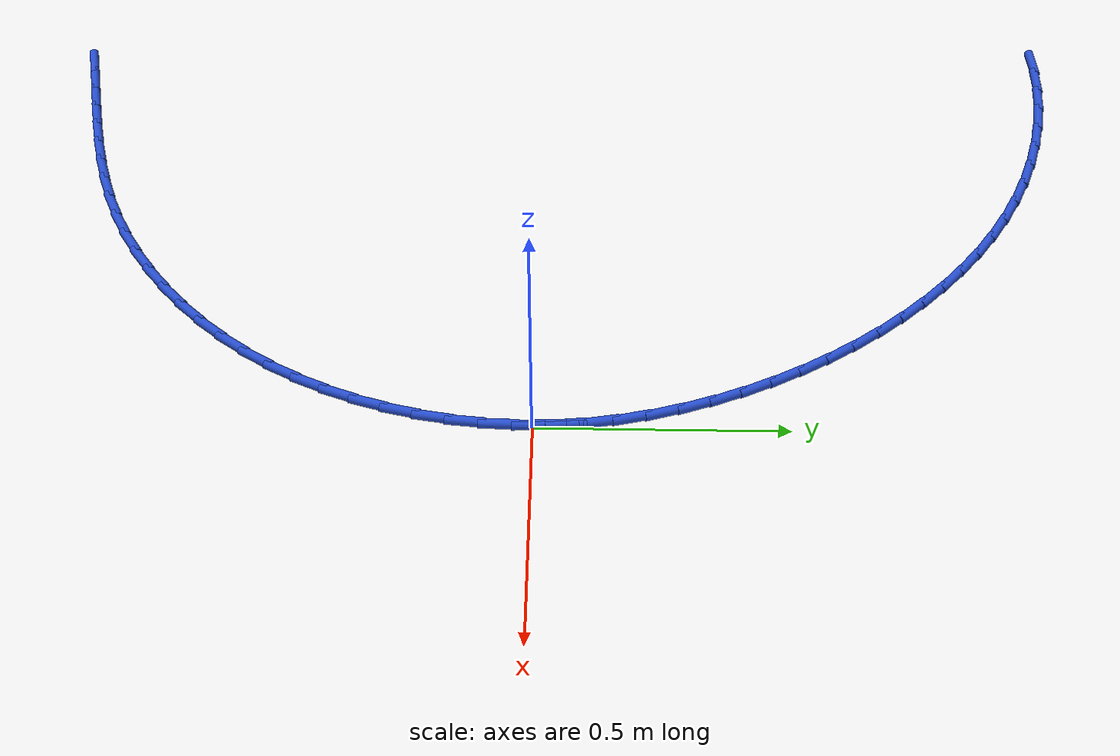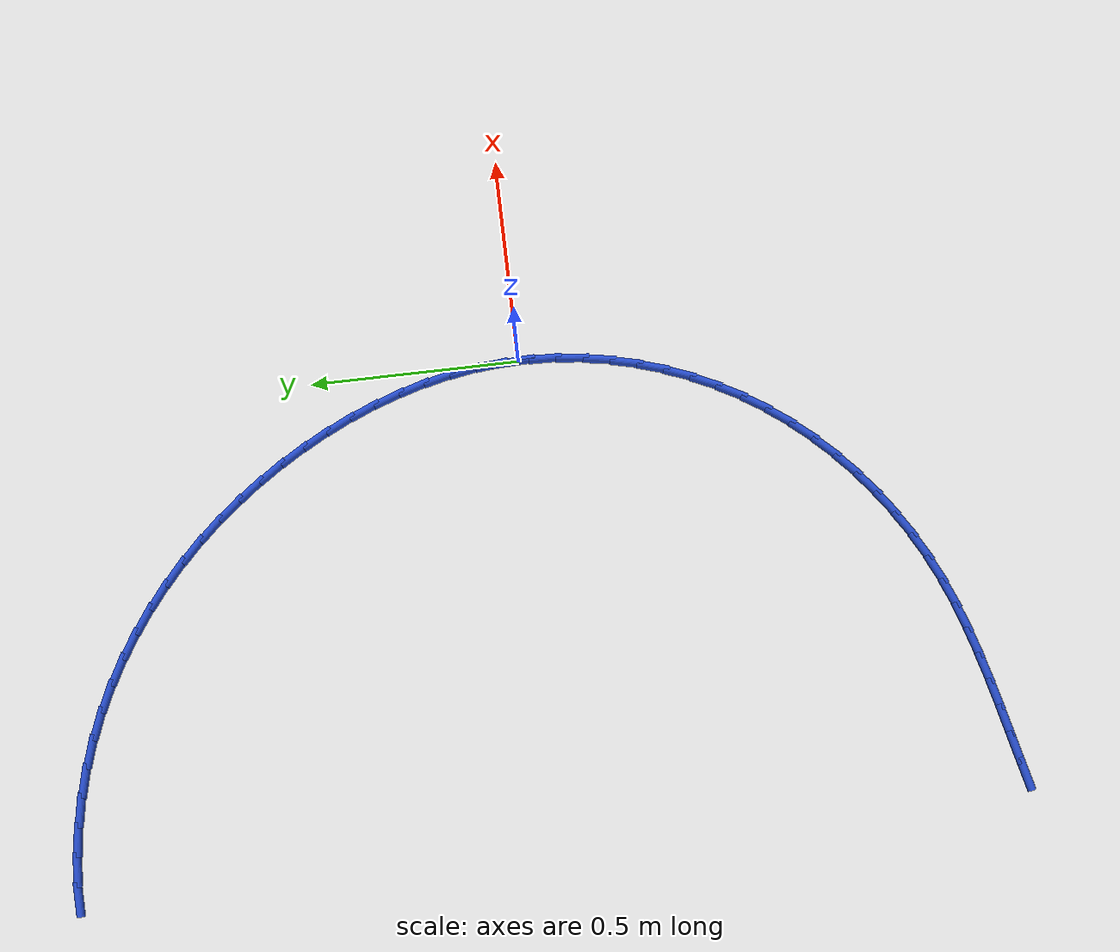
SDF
<sdf version="1.6">
 <world name="default">
  <model name="ground_plane">
   <static>1</static>
   <link name="link">
    <collision name="collision">
     <geometry><plane><normal>0 0 1</normal><size>100 100</size></plane></geometry>
     <surface><friction><ode><mu>100</mu><mu2>50</mu2></ode></friction></surface>
    </collision>
    <visual name="visual">
     <cast_shadows>0</cast_shadows>
     <geometry><plane><normal>0 0 1</normal><size>100 100</size></plane></geometry>
     <material>
      <script><uri>file://media/materials/scripts/gazebo.material</uri><name>Gazebo/WhiteGlow</name></script>
     </material>
    </visual>
   </link>
  </model>
  <model name="line">
   <link name="link_0">
    <pose>4.85722573273506e-17 -9.71445146547012e-17 0.01 0 1.57 -1.524656434522139</pose>
    <collision name="collision">
     <geometry><cylinder><radius>0.01</radius><length>0.08</length></cylinder></geometry>
    </collision>
    <visual name="visual">
     <material>
      <script><name>Gazebo/Blue</name><uri>file://media/materials/scripts/gazebo.material</uri></script>
     </material>
     <geometry><cylinder><radius>0.01</radius><length>0.08</length></cylinder></geometry>
    </visual>
   </link>
   <link name="link_1">
    <pose>-0.0029749131496951786 0.0644301843004377 0.01 0 1.57 -1.4567657183621507</pose>
    <collision name="collision">
     <geometry><cylinder><radius>0.01</radius><length>0.08</length></cylinder></geometry>
    </collision>
    <visual name="visual">
     <material>
      <script><name>Gazebo/Blue</name><uri>file://media/materials/scripts/gazebo.material</uri></script>
     </material>
     <geometry><cylinder><radius>0.01</radius><length>0.08</length></cylinder></geometry>
    </visual>
   </link>
   <link name="link_2">
    <pose>-0.010311254597614566 0.1284876847375876 0.01 0 1.57 -1.3918663711721646</pose>
    <collision name="collision">
     <geometry><cylinder><radius>0.01</radius><length>0.08</length></cylinder></geometry>
    </collision>
    <visual name="visual">
     <material>
      <script><name>Gazebo/Blue</name><uri>file://media/materials/scripts/gazebo.material</uri></script>
     </material>
     <geometry><cylinder><radius>0.01</radius><length>0.08</length></cylinder></geometry>
    </visual>
   </link>
   <link name="link_3">
    <pose>-0.02180216479442657 0.19202102040752406 0.01 0 1.57 -1.3299515441887544</pose>
    <collision name="collision">
     <geometry><cylinder><radius>0.01</radius><length>0.08</length></cylinder></geometry>
    </collision>
    <visual name="visual">
     <material>
      <script><name>Gazebo/Blue</name><uri>file://media/materials/scripts/gazebo.material</uri></script>
     </material>
     <geometry><cylinder><radius>0.01</radius><length>0.08</length></cylinder></geometry>
    </visual>
   </link>
   <link name="link_4">
    <pose>-0.03724078419079962 0.25487871040632126 0.01 0 1.57 -1.2709262907920054</pose>
    <collision name="collision">
     <geometry><cylinder><radius>0.01</radius><length>0.08</length></cylinder></geometry>
    </collision>
    <visual name="visual">
     <material>
      <script><name>Gazebo/Blue</name><uri>file://media/materials/scripts/gazebo.material</uri></script>
     </material>
     <geometry><cylinder><radius>0.01</radius><length>0.08</length></cylinder></geometry>
    </visual>
   </link>
   <link name="link_5">
    <pose>-0.05642025323740218 0.31690927383005346 0.01 0 1.57 -1.2146277151145326</pose>
    <collision name="collision">
     <geometry><cylinder><radius>0.01</radius><length>0.08</length></cylinder></geometry>
    </collision>
    <visual name="visual">
     <material>
      <script><name>Gazebo/Blue</name><uri>file://media/materials/scripts/gazebo.material</uri></script>
     </material>
     <geometry><cylinder><radius>0.01</radius><length>0.08</length></cylinder></geometry>
    </visual>
   </link>
   <link name="link_6">
    <pose>-0.07913371238490266 0.377961229774795 0.01 0 1.57 -1.16084298295596</pose>
    <collision name="collision">
     <geometry><cylinder><radius>0.01</radius><length>0.08</length></cylinder></geometry>
    </collision>
    <visual name="visual">
     <material>
      <script><name>Gazebo/Blue</name><uri>file://media/materials/scripts/gazebo.material</uri></script>
     </material>
     <geometry><cylinder><radius>0.01</radius><length>0.08</length></cylinder></geometry>
    </visual>
   </link>
   <link name="link_7">
    <pose>-0.10517430208396951 0.43788309733662 0.01 0 1.57 -1.1093241698538725</pose>
    <collision name="collision">
     <geometry><cylinder><radius>0.01</radius><length>0.08</length></cylinder></geometry>
    </collision>
    <visual name="visual">
     <material>
      <script><name>Gazebo/Blue</name><uri>file://media/materials/scripts/gazebo.material</uri></script>
     </material>
     <geometry><cylinder><radius>0.01</radius><length>0.08</length></cylinder></geometry>
    </visual>
   </link>
   <link name="link_8">
    <pose>-0.13433516278527122 0.4965233956116031 0.01 0 1.57 -1.0597953399727036</pose>
    <collision name="collision">
     <geometry><cylinder><radius>0.01</radius><length>0.08</length></cylinder></geometry>
    </collision>
    <visual name="visual">
     <material>
      <script><name>Gazebo/Blue</name><uri>file://media/materials/scripts/gazebo.material</uri></script>
     </material>
     <geometry><cylinder><radius>0.01</radius><length>0.08</length></cylinder></geometry>
    </visual>
   </link>
   <link name="link_9">
    <pose>-0.16640972633939105 0.5537305868075838 0.01 0 1.57 -1.011348140047373</pose>
    <collision name="collision">
     <geometry><cylinder><radius>0.01</radius><length>0.08</length></cylinder></geometry>
    </collision>
    <visual name="visual">
     <material>
      <script><name>Gazebo/Blue</name><uri>file://media/materials/scripts/gazebo.material</uri></script>
     </material>
     <geometry><cylinder><radius>0.01</radius><length>0.08</length></cylinder></geometry>
    </visual>
   </link>
   <link name="link_10">
    <pose>-0.20123427471767882 0.609344767763737 0.01 0 1.57 -0.9624730708298403</pose>
    <collision name="collision">
     <geometry><cylinder><radius>0.01</radius><length>0.08</length></cylinder></geometry>
    </collision>
    <visual name="visual">
     <material>
      <script><name>Gazebo/Blue</name><uri>file://media/materials/scripts/gazebo.material</uri></script>
     </material>
     <geometry><cylinder><radius>0.01</radius><length>0.08</length></cylinder></geometry>
    </visual>
   </link>
   <link name="link_11">
    <pose>-0.23873274293101282 0.6631889233490215 0.01 0 1.57 -0.9128312089106803</pose>
    <collision name="collision">
     <geometry><cylinder><radius>0.01</radius><length>0.08</length></cylinder></geometry>
    </collision>
    <visual name="visual">
     <material>
      <script><name>Gazebo/Blue</name><uri>file://media/materials/scripts/gazebo.material</uri></script>
     </material>
     <geometry><cylinder><radius>0.01</radius><length>0.08</length></cylinder></geometry>
    </visual>
   </link>
   <link name="link_12">
    <pose>-0.2788397841417928 0.7150839459928123 0.01 0 1.57 -0.8622508484679213</pose>
    <collision name="collision">
     <geometry><cylinder><radius>0.01</radius><length>0.08</length></cylinder></geometry>
    </collision>
    <visual name="visual">
     <material>
      <script><name>Gazebo/Blue</name><uri>file://media/materials/scripts/gazebo.material</uri></script>
     </material>
     <geometry><cylinder><radius>0.01</radius><length>0.08</length></cylinder></geometry>
    </visual>
   </link>
   <link name="link_13">
    <pose>-0.32149005151241844 0.7648507281244844 0.01 0 1.57 -0.8105721105890197</pose>
    <collision name="collision">
     <geometry><cylinder><radius>0.01</radius><length>0.08</length></cylinder></geometry>
    </collision>
    <visual name="visual">
     <material>
      <script><name>Gazebo/Blue</name><uri>file://media/materials/scripts/gazebo.material</uri></script>
     </material>
     <geometry><cylinder><radius>0.01</radius><length>0.08</length></cylinder></geometry>
    </visual>
   </link>
   <link name="link_14">
    <pose>-0.36661819820528924 0.8123101621734122 0.01 0 1.57 -0.7576504575154394</pose>
    <collision name="collision">
     <geometry><cylinder><radius>0.01</radius><length>0.08</length></cylinder></geometry>
    </collision>
    <visual name="visual">
     <material>
      <script><name>Gazebo/Blue</name><uri>file://media/materials/scripts/gazebo.material</uri></script>
     </material>
     <geometry><cylinder><radius>0.01</radius><length>0.08</length></cylinder></geometry>
    </visual>
   </link>
   <link name="link_15">
    <pose>-0.4141588773828051 0.8572831405689711 0.01 0 1.57 -0.7033610318521443</pose>
    <collision name="collision">
     <geometry><cylinder><radius>0.01</radius><length>0.08</length></cylinder></geometry>
    </collision>
    <visual name="visual">
     <material>
      <script><name>Gazebo/Blue</name><uri>file://media/materials/scripts/gazebo.material</uri></script>
     </material>
     <geometry><cylinder><radius>0.01</radius><length>0.08</length></cylinder></geometry>
    </visual>
   </link>
   <link name="link_16">
    <pose>-0.46404674220736575 0.8995905557405358 0.01 0 1.57 -0.6476038121578834</pose>
    <collision name="collision">
     <geometry><cylinder><radius>0.01</radius><length>0.08</length></cylinder></geometry>
    </collision>
    <visual name="visual">
     <material>
      <script><name>Gazebo/Blue</name><uri>file://media/materials/scripts/gazebo.material</uri></script>
     </material>
     <geometry><cylinder><radius>0.01</radius><length>0.08</length></cylinder></geometry>
    </visual>
   </link>
   <link name="link_17">
    <pose>-0.5162164458413705 0.9390533001174807 0.01 0 1.57 -0.5903094747901391</pose>
    <collision name="collision">
     <geometry><cylinder><radius>0.01</radius><length>0.08</length></cylinder></geometry>
    </collision>
    <visual name="visual">
     <material>
      <script><name>Gazebo/Blue</name><uri>file://media/materials/scripts/gazebo.material</uri></script>
     </material>
     <geometry><cylinder><radius>0.01</radius><length>0.08</length></cylinder></geometry>
    </visual>
   </link>
   <link name="link_18">
    <pose>-0.5706026414472194 0.9754922661291812 0.01 0 1.57 -0.5314457160186805</pose>
    <collision name="collision">
     <geometry><cylinder><radius>0.01</radius><length>0.08</length></cylinder></geometry>
    </collision>
    <visual name="visual">
     <material>
      <script><name>Gazebo/Blue</name><uri>file://media/materials/scripts/gazebo.material</uri></script>
     </material>
     <geometry><cylinder><radius>0.01</radius><length>0.08</length></cylinder></geometry>
    </visual>
   </link>
   <link name="link_19">
    <pose>-0.627139982187312 1.008728346205012 0.01 0 1.57 -0.4710236235143793</pose>
    <collision name="collision">
     <geometry><cylinder><radius>0.01</radius><length>0.08</length></cylinder></geometry>
    </collision>
    <visual name="visual">
     <material>
      <script><name>Gazebo/Blue</name><uri>file://media/materials/scripts/gazebo.material</uri></script>
     </material>
     <geometry><cylinder><radius>0.01</radius><length>0.08</length></cylinder></geometry>
    </visual>
   </link>
   <link name="link_20">
    <pose>-0.685763121224048 1.0385824327743478 0.01 0 1.57 -0.40910350942941914</pose>
    <collision name="collision">
     <geometry><cylinder><radius>0.01</radius><length>0.08</length></cylinder></geometry>
    </collision>
    <visual name="visual">
     <material>
      <script><name>Gazebo/Blue</name><uri>file://media/materials/scripts/gazebo.material</uri></script>
     </material>
     <geometry><cylinder><radius>0.01</radius><length>0.08</length></cylinder></geometry>
    </visual>
   </link>
   <link name="link_21">
    <pose>-0.7464067117198266 1.0648754182665632 0.01 0 1.57 -0.3458070608126541</pose>
    <collision name="collision">
     <geometry><cylinder><radius>0.01</radius><length>0.08</length></cylinder></geometry>
    </collision>
    <visual name="visual">
     <material>
      <script><name>Gazebo/Blue</name><uri>file://media/materials/scripts/gazebo.material</uri></script>
     </material>
     <geometry><cylinder><radius>0.01</radius><length>0.08</length></cylinder></geometry>
    </visual>
   </link>
   <link name="link_22">
    <pose>-0.8090042279125875 1.0874283079122833 0.01 0 1.57 -0.2819776294985658</pose>
    <collision name="collision">
     <geometry><cylinder><radius>0.01</radius><length>0.08</length></cylinder></geometry>
    </collision>
    <visual name="visual">
     <material>
      <script><name>Gazebo/Blue</name><uri>file://media/materials/scripts/gazebo.material</uri></script>
     </material>
     <geometry><cylinder><radius>0.01</radius><length>0.08</length></cylinder></geometry>
    </visual>
   </link>
   <link name="link_23">
    <pose>-0.8733664892705679 1.106073842733336 0.01 0 1.57 -0.2185326369372709</pose>
    <collision name="collision">
     <geometry><cylinder><radius>0.01</radius><length>0.08</length></cylinder></geometry>
    </collision>
    <visual name="visual">
     <material>
      <script><name>Gazebo/Blue</name><uri>file://media/materials/scripts/gazebo.material</uri></script>
     </material>
     <geometry><cylinder><radius>0.01</radius><length>0.08</length></cylinder></geometry>
    </visual>
   </link>
   <link name="link_24">
    <pose>-0.9390761632898281 1.1206665936723492 0.01 0 1.57 -0.15482586997781483</pose>
    <collision name="collision">
     <geometry><cylinder><radius>0.01</radius><length>0.08</length></cylinder></geometry>
    </collision>
    <visual name="visual">
     <material>
      <script><name>Gazebo/Blue</name><uri>file://media/materials/scripts/gazebo.material</uri></script>
     </material>
     <geometry><cylinder><radius>0.01</radius><length>0.08</length></cylinder></geometry>
    </visual>
   </link>
   <link name="link_25">
    <pose>-1.0056910559875676 1.1310635104553068 0.01 0 1.57 -0.09006901137833963</pose>
    <collision name="collision">
     <geometry><cylinder><radius>0.01</radius><length>0.08</length></cylinder></geometry>
    </collision>
    <visual name="visual">
     <material>
      <script><name>Gazebo/Blue</name><uri>file://media/materials/scripts/gazebo.material</uri></script>
     </material>
     <geometry><cylinder><radius>0.01</radius><length>0.08</length></cylinder></geometry>
    </visual>
   </link>
   <link name="link_26">
    <pose>-1.0727689733809862 1.137121542808194 0.01 0 1.57 -0.023484907272703887</pose>
    <collision name="collision">
     <geometry><cylinder><radius>0.01</radius><length>0.08</length></cylinder></geometry>
    </collision>
    <visual name="visual">
     <material>
      <script><name>Gazebo/Blue</name><uri>file://media/materials/scripts/gazebo.material</uri></script>
     </material>
     <geometry><cylinder><radius>0.01</radius><length>0.08</length></cylinder></geometry>
    </visual>
   </link>
   <link name="link_27">
    <pose>-1.1398677214872837 1.1386976404569957 0.01 0 1.57 0.04569412947212693</pose>
    <collision name="collision">
     <geometry><cylinder><radius>0.01</radius><length>0.08</length></cylinder></geometry>
    </collision>
    <visual name="visual">
     <material>
      <script><name>Gazebo/Blue</name><uri>file://media/materials/scripts/gazebo.material</uri></script>
     </material>
     <geometry><cylinder><radius>0.01</radius><length>0.08</length></cylinder></geometry>
    </visual>
   </link>
   <link name="link_84">
    <pose>-1.1054994521472716 -1.0578732640866308 0.01 0 1.57 0.22025238587209262</pose>
    <collision name="collision">
     <geometry><cylinder><radius>0.01</radius><length>0.08</length></cylinder></geometry>
    </collision>
    <visual name="visual">
     <material>
      <script><name>Gazebo/Blue</name><uri>file://media/materials/scripts/gazebo.material</uri></script>
     </material>
     <geometry><cylinder><radius>0.01</radius><length>0.08</length></cylinder></geometry>
    </visual>
   </link>
   <link name="link_85">
    <pose>-1.0419345693854802 -1.043642075710552 0.01 0 1.57 0.2159953931601478</pose>
    <collision name="collision">
     <geometry><cylinder><radius>0.01</radius><length>0.08</length></cylinder></geometry>
    </collision>
    <visual name="visual">
     <material>
      <script><name>Gazebo/Blue</name><uri>file://media/materials/scripts/gazebo.material</uri></script>
     </material>
     <geometry><cylinder><radius>0.01</radius><length>0.08</length></cylinder></geometry>
    </visual>
   </link>
   <link name="link_86">
    <pose>-0.9786045428349248 -1.029746308856796 0.01 0 1.57 0.22071317221761327</pose>
    <collision name="collision">
     <geometry><cylinder><radius>0.01</radius><length>0.08</length></cylinder></geometry>
    </collision>
    <visual name="visual">
     <material>
      <script><name>Gazebo/Blue</name><uri>file://media/materials/scripts/gazebo.material</uri></script>
     </material>
     <geometry><cylinder><radius>0.01</radius><length>0.08</length></cylinder></geometry>
    </visual>
   </link>
   <link name="link_87">
    <pose>-0.9156502059909428 -1.0156213465405357 0.01 0 1.57 0.23454070662494564</pose>
    <collision name="collision">
     <geometry><cylinder><radius>0.01</radius><length>0.08</length></cylinder></geometry>
    </collision>
    <visual name="visual">
     <material>
      <script><name>Gazebo/Blue</name><uri>file://media/materials/scripts/gazebo.material</uri></script>
     </material>
     <geometry><cylinder><radius>0.01</radius><length>0.08</length></cylinder></geometry>
    </visual>
   </link>
   <link name="link_88">
    <pose>-0.8532123923488748 -1.0007025717769444 0.01 0 1.57 0.25761417921121893</pose>
    <collision name="collision">
     <geometry><cylinder><radius>0.01</radius><length>0.08</length></cylinder></geometry>
    </collision>
    <visual name="visual">
     <material>
      <script><name>Gazebo/Blue</name><uri>file://media/materials/scripts/gazebo.material</uri></script>
     </material>
     <geometry><cylinder><radius>0.01</radius><length>0.08</length></cylinder></geometry>
    </visual>
   </link>
   <link name="link_89">
    <pose>-0.7914319354040585 -0.9844253675811959 0.01 0 1.57 0.2900355720072968</pose>
    <collision name="collision">
     <geometry><cylinder><radius>0.01</radius><length>0.08</length></cylinder></geometry>
    </collision>
    <visual name="visual">
     <material>
      <script><name>Gazebo/Blue</name><uri>file://media/materials/scripts/gazebo.material</uri></script>
     </material>
     <geometry><cylinder><radius>0.01</radius><length>0.08</length></cylinder></geometry>
    </visual>
   </link>
   <link name="link_90">
    <pose>-0.7304496686518341 -0.9662251169684639 0.01 0 1.57 0.33181157678569667</pose>
    <collision name="collision">
     <geometry><cylinder><radius>0.01</radius><length>0.08</length></cylinder></geometry>
    </collision>
    <visual name="visual">
     <material>
      <script><name>Gazebo/Blue</name><uri>file://media/materials/scripts/gazebo.material</uri></script>
     </material>
     <geometry><cylinder><radius>0.01</radius><length>0.08</length></cylinder></geometry>
    </visual>
   </link>
   <link name="link_91">
    <pose>-0.6704064255875395 -0.9455372029539216 0.01 0 1.57 0.3827681503793223</pose>
    <collision name="collision">
     <geometry><cylinder><radius>0.01</radius><length>0.08</length></cylinder></geometry>
    </collision>
    <visual name="visual">
     <material>
      <script><name>Gazebo/Blue</name><uri>file://media/materials/scripts/gazebo.material</uri></script>
     </material>
     <geometry><cylinder><radius>0.01</radius><length>0.08</length></cylinder></geometry>
    </visual>
   </link>
   <link name="link_92">
    <pose>-0.6114430397065149 -0.9217970085527429 0.01 0 1.57 0.44220609938778854</pose>
    <collision name="collision">
     <geometry><cylinder><radius>0.01</radius><length>0.08</length></cylinder></geometry>
    </collision>
    <visual name="visual">
     <material>
      <script><name>Gazebo/Blue</name><uri>file://media/materials/scripts/gazebo.material</uri></script>
     </material>
     <geometry><cylinder><radius>0.01</radius><length>0.08</length></cylinder></geometry>
    </visual>
   </link>
   <link name="link_93">
    <pose>-0.5537039662423164 -0.8944588055685522 0.01 0 1.57 0.504894475485176</pose>
    <collision name="collision">
     <geometry><cylinder><radius>0.01</radius><length>0.08</length></cylinder></geometry>
    </collision>
    <visual name="visual">
     <material>
      <script><name>Gazebo/Blue</name><uri>file://media/materials/scripts/gazebo.material</uri></script>
     </material>
     <geometry><cylinder><radius>0.01</radius><length>0.08</length></cylinder></geometry>
    </visual>
   </link>
   <link name="link_94">
    <pose>-0.497403896847798 -0.8633431763403524 0.01 0 1.57 0.5668072653437853</pose>
    <collision name="collision">
     <geometry><cylinder><radius>0.01</radius><length>0.08</length></cylinder></geometry>
    </collision>
    <visual name="visual">
     <material>
      <script><name>Gazebo/Blue</name><uri>file://media/materials/scripts/gazebo.material</uri></script>
     </material>
     <geometry><cylinder><radius>0.01</radius><length>0.08</length></cylinder></geometry>
    </visual>
   </link>
   <link name="link_95">
    <pose>-0.44282118788139996 -0.8286027396723088 0.01 0 1.57 0.6282637549437781</pose>
    <collision name="collision">
     <geometry><cylinder><radius>0.01</radius><length>0.08</length></cylinder></geometry>
    </collision>
    <visual name="visual">
     <material>
      <script><name>Gazebo/Blue</name><uri>file://media/materials/scripts/gazebo.material</uri></script>
     </material>
     <geometry><cylinder><radius>0.01</radius><length>0.08</length></cylinder></geometry>
    </visual>
   </link>
   <link name="link_96">
    <pose>-0.39023649911959213 -0.7904021275990347 0.01 0 1.57 0.6897255027997116</pose>
    <collision name="collision">
     <geometry><cylinder><radius>0.01</radius><length>0.08</length></cylinder></geometry>
    </collision>
    <visual name="visual">
     <material>
      <script><name>Gazebo/Blue</name><uri>file://media/materials/scripts/gazebo.material</uri></script>
     </material>
     <geometry><cylinder><radius>0.01</radius><length>0.08</length></cylinder></geometry>
    </visual>
   </link>
   <link name="link_97">
    <pose>-0.33993049033884243 -0.7489059721551418 0.01 0 1.57 0.7516394651963737</pose>
    <collision name="collision">
     <geometry><cylinder><radius>0.01</radius><length>0.08</length></cylinder></geometry>
    </collision>
    <visual name="visual">
     <material>
      <script><name>Gazebo/Blue</name><uri>file://media/materials/scripts/gazebo.material</uri></script>
     </material>
     <geometry><cylinder><radius>0.01</radius><length>0.08</length></cylinder></geometry>
    </visual>
   </link>
   <link name="link_98">
    <pose>-0.29218382131561865 -0.7042789053752413 0.01 0 1.57 0.8144351472918994</pose>
    <collision name="collision">
     <geometry><cylinder><radius>0.01</radius><length>0.08</length></cylinder></geometry>
    </collision>
    <visual name="visual">
     <material>
      <script><name>Gazebo/Blue</name><uri>file://media/materials/scripts/gazebo.material</uri></script>
     </material>
     <geometry><cylinder><radius>0.01</radius><length>0.08</length></cylinder></geometry>
    </visual>
   </link>
   <link name="link_99">
    <pose>-0.2472771518263907 -0.6566855592939466 0.01 0 1.57 0.8785202119454066</pose>
    <collision name="collision">
     <geometry><cylinder><radius>0.01</radius><length>0.08</length></cylinder></geometry>
    </collision>
    <visual name="visual">
     <material>
      <script><name>Gazebo/Blue</name><uri>file://media/materials/scripts/gazebo.material</uri></script>
     </material>
     <geometry><cylinder><radius>0.01</radius><length>0.08</length></cylinder></geometry>
    </visual>
   </link>
   <link name="link_100">
    <pose>-0.20549114164762586 -0.6062905659458687 0.01 0 1.57 0.9442736205603124</pose>
    <collision name="collision">
     <geometry><cylinder><radius>0.01</radius><length>0.08</length></cylinder></geometry>
    </collision>
    <visual name="visual">
     <material>
      <script><name>Gazebo/Blue</name><uri>file://media/materials/scripts/gazebo.material</uri></script>
     </material>
     <geometry><cylinder><radius>0.01</radius><length>0.08</length></cylinder></geometry>
    </visual>
   </link>
   <link name="link_101">
    <pose>-0.16710645055579382 -0.5532585573656209 0.01 0 1.57 1.0117672804151705</pose>
    <collision name="collision">
     <geometry><cylinder><radius>0.01</radius><length>0.08</length></cylinder></geometry>
    </collision>
    <visual name="visual">
     <material>
      <script><name>Gazebo/Blue</name><uri>file://media/materials/scripts/gazebo.material</uri></script>
     </material>
     <geometry><cylinder><radius>0.01</radius><length>0.08</length></cylinder></geometry>
    </visual>
   </link>
   <link name="link_102">
    <pose>-0.13238957618919445 -0.497764633239148 0.01 0 1.57 1.0791182032345243</pose>
    <collision name="collision">
     <geometry><cylinder><radius>0.01</radius><length>0.08</length></cylinder></geometry>
    </collision>
    <visual name="visual">
     <material>
      <script><name>Gazebo/Blue</name><uri>file://media/materials/scripts/gazebo.material</uri></script>
     </material>
     <geometry><cylinder><radius>0.01</radius><length>0.08</length></cylinder></geometry>
    </visual>
   </link>
   <link name="link_103">
    <pose>-0.10149119822496903 -0.4400694977014787 0.01 0 1.57 1.1455919808103785</pose>
    <collision name="collision">
     <geometry><cylinder><radius>0.01</radius><length>0.08</length></cylinder></geometry>
    </collision>
    <visual name="visual">
     <material>
      <script><name>Gazebo/Blue</name><uri>file://media/materials/scripts/gazebo.material</uri></script>
     </material>
     <geometry><cylinder><radius>0.01</radius><length>0.08</length></cylinder></geometry>
    </visual>
   </link>
   <link name="link_104">
    <pose>-0.07450537749795151 -0.38047570353317456 0.01 0 1.57 1.2115460209762092</pose>
    <collision name="collision">
     <geometry><cylinder><radius>0.01</radius><length>0.08</length></cylinder></geometry>
    </collision>
    <visual name="visual">
     <material>
      <script><name>Gazebo/Blue</name><uri>file://media/materials/scripts/gazebo.material</uri></script>
     </material>
     <geometry><cylinder><radius>0.01</radius><length>0.08</length></cylinder></geometry>
    </visual>
   </link>
   <link name="link_105">
    <pose>-0.051525789809620706 -0.31928608810423603 0.01 0 1.57 1.277359990151222</pose>
    <collision name="collision">
     <geometry><cylinder><radius>0.01</radius><length>0.08</length></cylinder></geometry>
    </collision>
    <visual name="visual">
     <material>
      <script><name>Gazebo/Blue</name><uri>file://media/materials/scripts/gazebo.material</uri></script>
     </material>
     <geometry><cylinder><radius>0.01</radius><length>0.08</length></cylinder></geometry>
    </visual>
   </link>
   <link name="link_106">
    <pose>-0.032646110961454304 -0.2568034887846614 0.01 0 1.57 1.3434211041257713</pose>
    <collision name="collision">
     <geometry><cylinder><radius>0.01</radius><length>0.08</length></cylinder></geometry>
    </collision>
    <visual name="visual">
     <material>
      <script><name>Gazebo/Blue</name><uri>file://media/materials/scripts/gazebo.material</uri></script>
     </material>
     <geometry><cylinder><radius>0.01</radius><length>0.08</length></cylinder></geometry>
    </visual>
   </link>
   <link name="link_107">
    <pose>-0.017960016754930957 -0.19333074294445163 0.01 0 1.57 1.4101171060323017</pose>
    <collision name="collision">
     <geometry><cylinder><radius>0.01</radius><length>0.08</length></cylinder></geometry>
    </collision>
    <visual name="visual">
     <material>
      <script><name>Gazebo/Blue</name><uri>file://media/materials/scripts/gazebo.material</uri></script>
     </material>
     <geometry><cylinder><radius>0.01</radius><length>0.08</length></cylinder></geometry>
    </visual>
   </link>
   <link name="link_108">
    <pose>-0.007561182991528543 -0.12917068795360467 0.01 0 1.57 1.4778287227629245</pose>
    <collision name="collision">
     <geometry><cylinder><radius>0.01</radius><length>0.08</length></cylinder></geometry>
    </collision>
    <visual name="visual">
     <material>
      <script><name>Gazebo/Blue</name><uri>file://media/materials/scripts/gazebo.material</uri></script>
     </material>
     <geometry><cylinder><radius>0.01</radius><length>0.08</length></cylinder></geometry>
    </visual>
   </link>
   <link name="link_109">
    <pose>-0.001543285472725529 -0.0646261611821216 0.01 0 1.57 1.546920667388844</pose>
    <collision name="collision">
     <geometry><cylinder><radius>0.01</radius><length>0.08</length></cylinder></geometry>
    </collision>
    <visual name="visual">
     <material>
      <script><name>Gazebo/Blue</name><uri>file://media/materials/scripts/gazebo.material</uri></script>
     </material>
     <geometry><cylinder><radius>0.01</radius><length>0.08</length></cylinder></geometry>
    </visual>
   </link>
   <link name="link_110">
    <pose>3.122502256758253e-17 -2.914335439641036e-16 0.01 0 1.57 -1.523862348801521</pose>
    <collision name="collision">
     <geometry><cylinder><radius>0.01</radius><length>0.08</length></cylinder></geometry>
    </collision>
    <visual name="visual">
     <material>
      <script><name>Gazebo/Blue</name><uri>file://media/materials/scripts/gazebo.material</uri></script>
     </material>
     <geometry><cylinder><radius>0.01</radius><length>0.08</length></cylinder></geometry>
    </visual>
   </link>
   <link name="link_111">
    <pose>-0.0030250023748301033 0.06440495822275812 0.01 0 1.57 -1.5238623488015206</pose>
    <collision name="collision">
     <geometry><cylinder><radius>0.01</radius><length>0.08</length></cylinder></geometry>
    </collision>
    <visual name="visual">
     <material>
      <script><name>Gazebo/Blue</name><uri>file://media/materials/scripts/gazebo.material</uri></script>
     </material>
     <geometry><cylinder><radius>0.01</radius><length>0.08</length></cylinder></geometry>
    </visual>
   </link>
  </model>
 </world>
</sdf>
